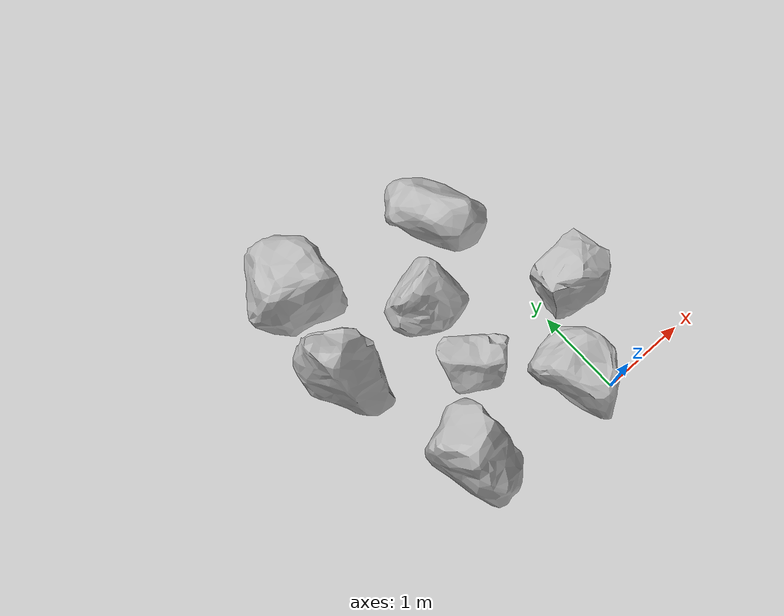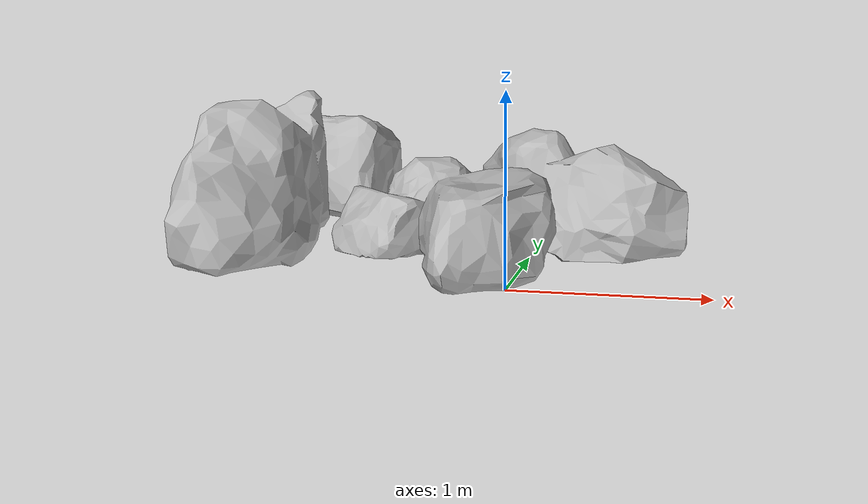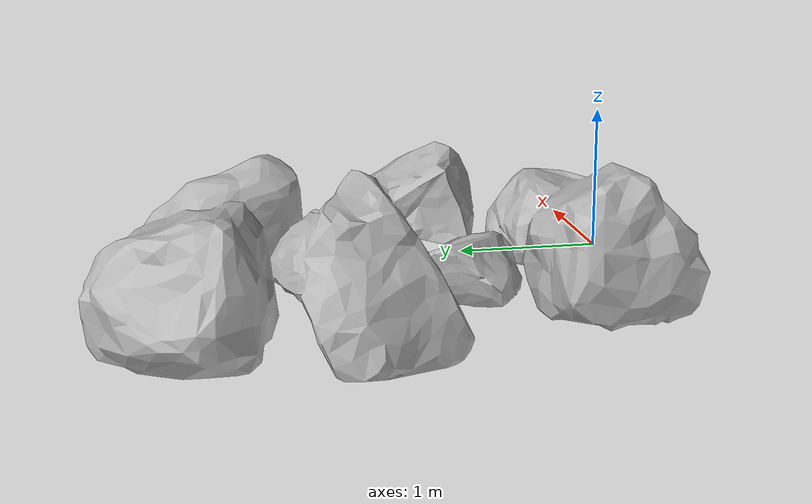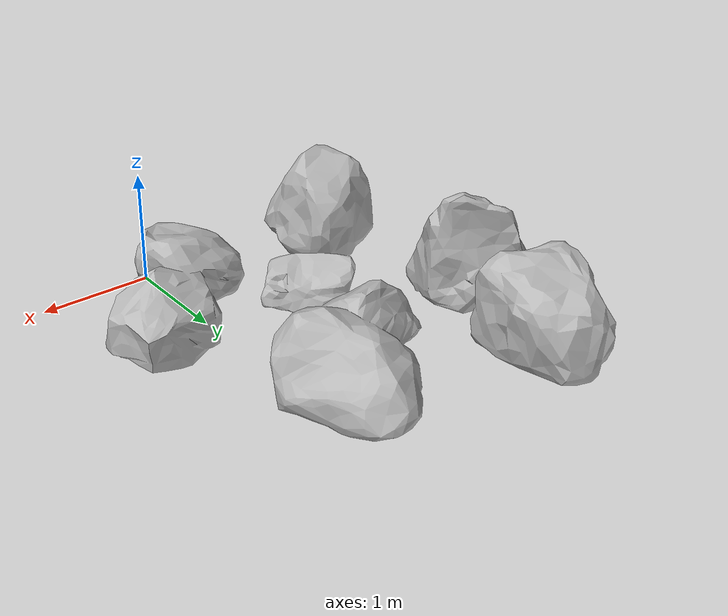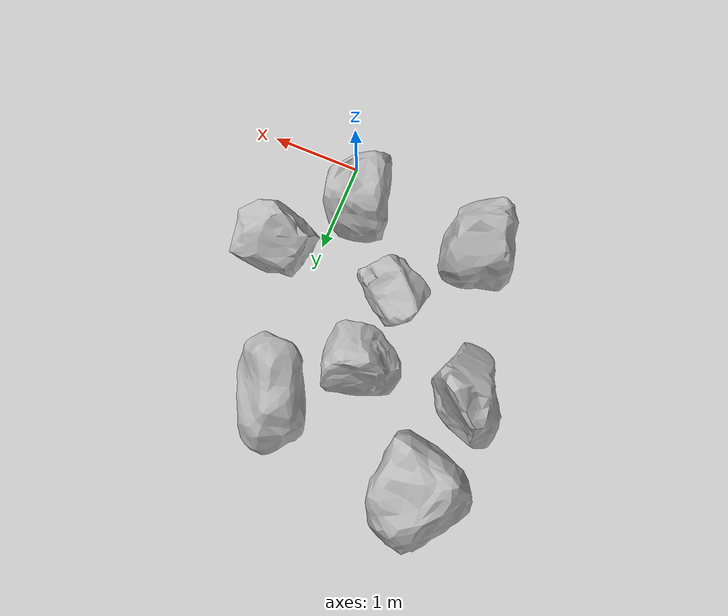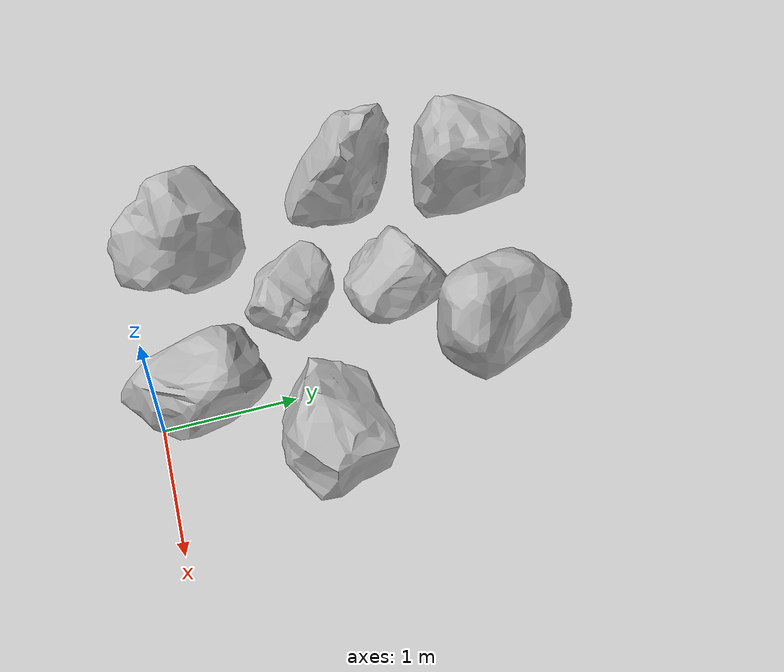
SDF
<?xml version="1.0" ?>
<sdf version="1.5">
  <model name="rock_2">
    <static>true</static>
    <link name="rock_2_link">
      <collision name="collision">
        <geometry>
          <mesh>
            <uri>model://rock_2/meshes/model.dae</uri>
          </mesh>
        </geometry>
      </collision>
      <visual name="visual">
        <geometry>
          <mesh>
            <uri>model://rock_2/meshes/model.dae</uri>
          </mesh>
        </geometry>
      </visual>
    </link>
  </model>
</sdf>
